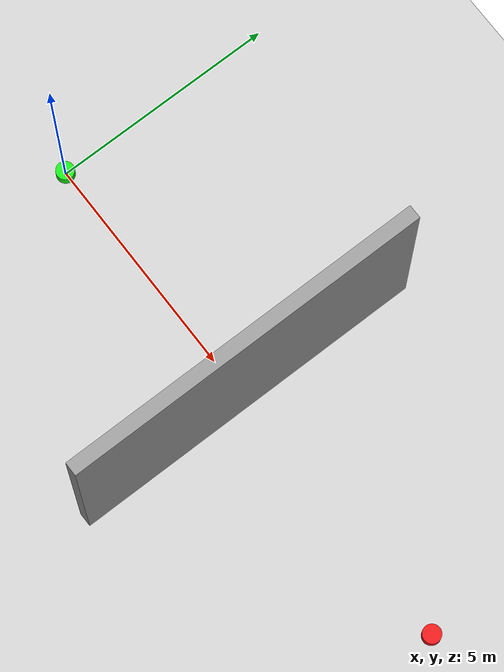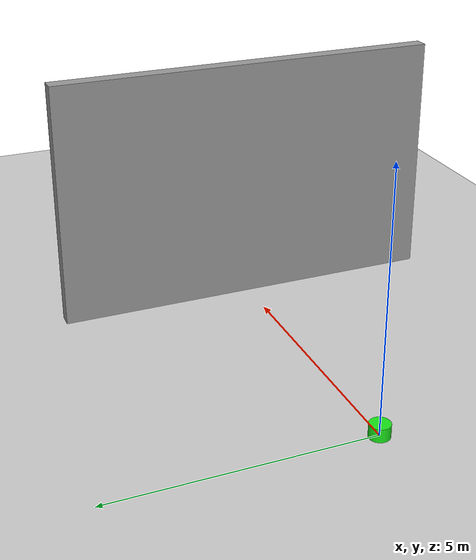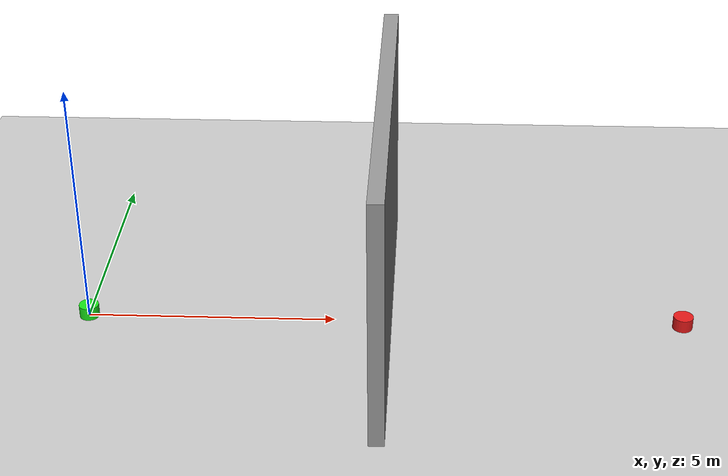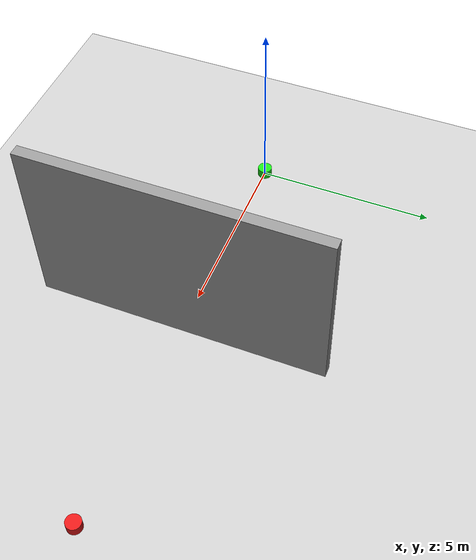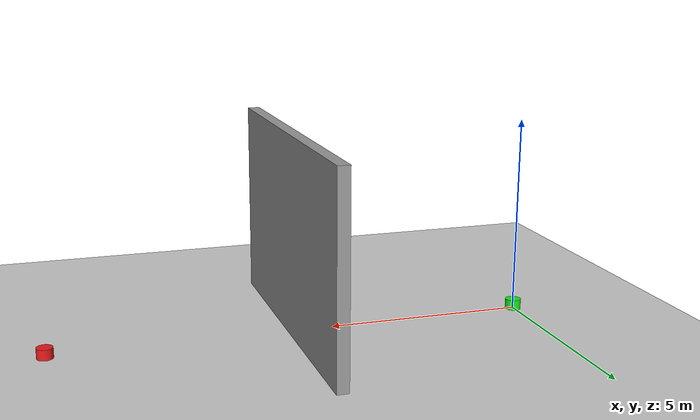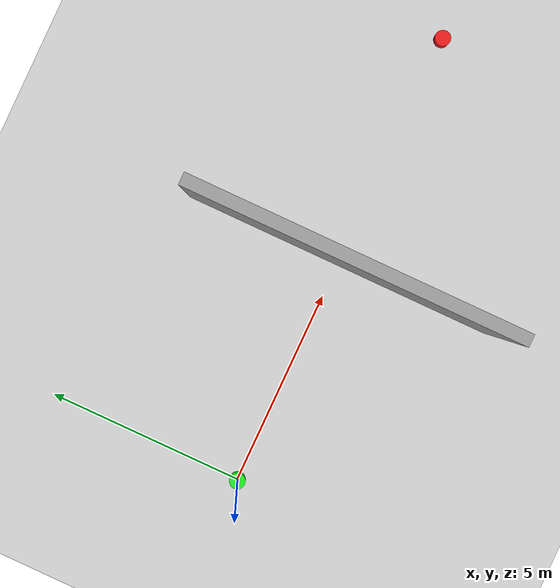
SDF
<?xml version="1.0" ?>
<sdf version="1.6">
  <world name="long_wall_test">

    <physics type="ode">
      <max_step_size>0.001</max_step_size>
      <real_time_factor>1.0</real_time_factor>
      <real_time_update_rate>1000</real_time_update_rate>
      <gravity>0 0 -9.81</gravity>
      <ode>
        <solver><type>quick</type><iters>50</iters><sor>1.3</sor></solver>
        <constraints>
          <cfm>0.0</cfm><erp>0.2</erp>
          <contact_max_correcting_vel>100.0</contact_max_correcting_vel>
          <contact_surface_layer>0.001</contact_surface_layer>
        </constraints>
      </ode>
    </physics>

    <scene>
      <ambient>0.5 0.5 0.5 1.0</ambient>
      <shadows>false</shadows>
      <grid>false</grid>
    </scene>

    <include><uri>model://sun</uri></include>
    <include><uri>model://ground_plane</uri></include>

    <!-- The long wall: 16m long, 2.5m tall, 0.3m thick -->
    <!-- Spans y=-8 to y=8, gap at y > 8 -->
    <model name="the_wall">
      <static>true</static>
      <pose>6 0 2.5 0 0 0</pose>
      <link name="link">
        <collision name="collision">
          <geometry><box><size>0.3 8 5.0</size></box></geometry>
        </collision>
        <visual name="visual">
          <geometry><box><size>0.3 8 5.0</size></box></geometry>
          <material>
            <ambient>0.6 0.6 0.6 1.0</ambient>
            <diffuse>0.6 0.6 0.6 1.0</diffuse>
          </material>
        </visual>
      </link>
    </model>

    <!-- Start marker -->
    <model name="marker_start"><static>true</static><pose>0 0 0 0 0 0</pose>
      <link name="link">
        <visual name="v"><geometry><cylinder><radius>0.2</radius><length>0.5</length></cylinder></geometry>
          <material><ambient>0.1 0.9 0.1 1</ambient><diffuse>0.1 0.9 0.1 1</diffuse></material></visual>
      </link></model>

    <!-- Goal marker -->
    <model name="marker_goal"><static>true</static><pose>12 0 0 0 0 0</pose>
      <link name="link">
        <visual name="v"><geometry><cylinder><radius>0.2</radius><length>0.5</length></cylinder></geometry>
          <material><ambient>0.9 0.1 0.1 1</ambient><diffuse>0.9 0.1 0.1 1</diffuse></material></visual>
      </link></model>

  </world>
</sdf>
